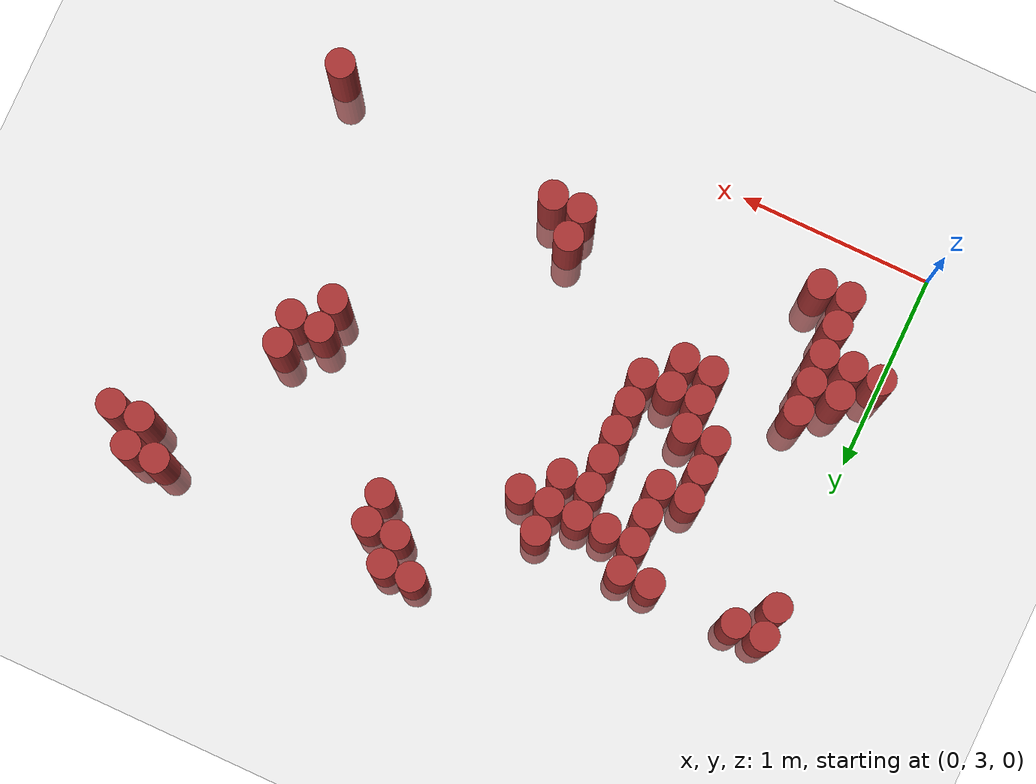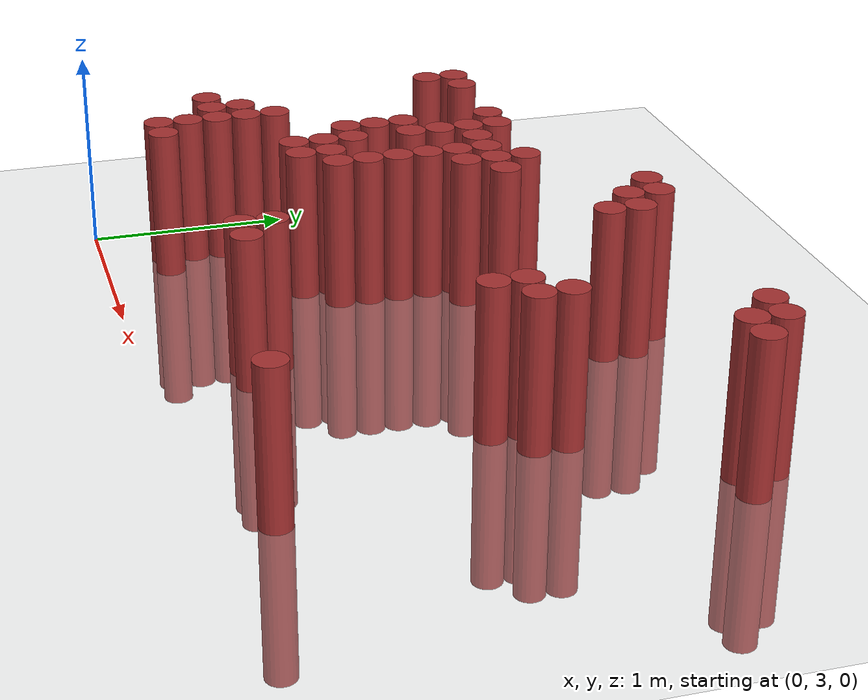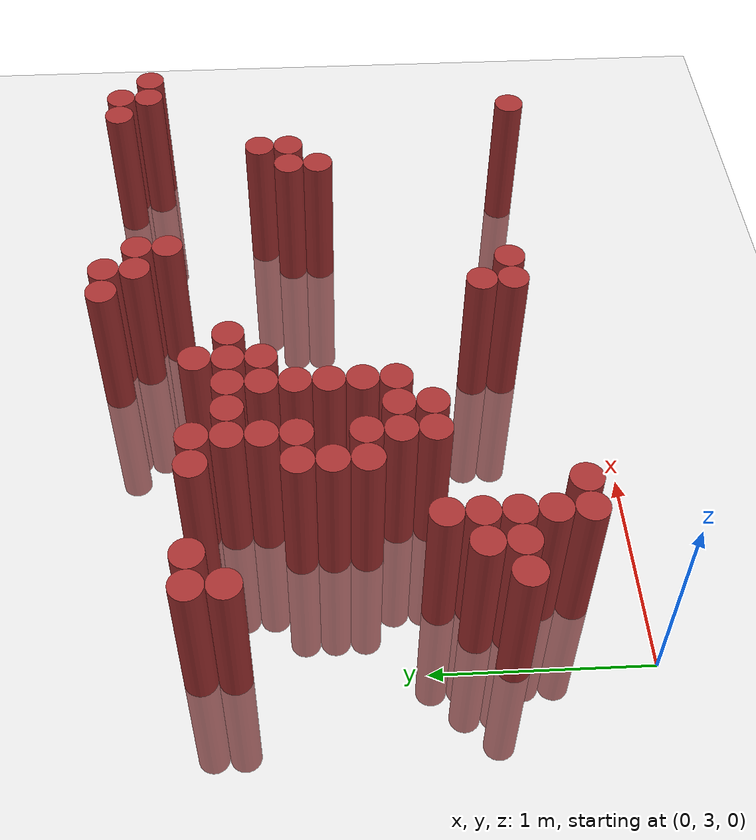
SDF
<sdf version="1.6">
 <world name="default">
  <model name="ground_plane">
   <static>1</static>
   <link name="link">
    <collision name="collision">
     <geometry><plane><normal>0 0 1</normal><size>100 100</size></plane></geometry>
     <surface><friction><ode><mu>100</mu><mu2>50</mu2></ode></friction></surface>
    </collision>
    <visual name="visual">
     <cast_shadows>0</cast_shadows>
     <geometry><plane><normal>0 0 1</normal><size>100 100</size></plane></geometry>
     <material>
      <script><uri>file://media/materials/scripts/gazebo.material</uri><name>Gazebo/Grey</name></script>
     </material>
    </visual>
   </link>
  </model>
  <model name="unit_cylinder_407">
   <static>1</static>
   <pose>0.025000 3.625000 0.000000 0.000000 0.000000 0.000000</pose>
   <link name="link">
    <inertial>
     <mass>1</mass>
     <inertia><ixx>0.145833</ixx><ixy>0</ixy><ixz>0</ixz><iyy>0.145833</iyy><iyz>0</iyz><izz>0.125</izz></inertia>
    </inertial>
    <collision name="collision">
     <geometry><cylinder><radius>0.075000</radius><length>1.5</length></cylinder></geometry>
    </collision>
    <visual name="visual">
     <geometry><cylinder><radius>0.075000</radius><length>1.5</length></cylinder></geometry>
     <material>
      <ambient>0.648000 0.192000 0.192000 1</ambient>
      <diffuse>0.648000 0.192000 0.192000 1</diffuse>
     </material>
     <material>
      <script><name>Gazebo/Grey</name><uri>file://media/materials/scripts/gazebo.material</uri></script>
     </material>
    </visual>
   </link>
  </model>
  <model name="unit_cylinder_408">
   <static>1</static>
   <pose>0.025000 4.825000 0.000000 0.000000 0.000000 0.000000</pose>
   <link name="link">
    <inertial>
     <mass>1</mass>
     <inertia><ixx>0.145833</ixx><ixy>0</ixy><ixz>0</ixz><iyy>0.145833</iyy><iyz>0</iyz><izz>0.125</izz></inertia>
    </inertial>
    <collision name="collision">
     <geometry><cylinder><radius>0.075000</radius><length>1.5</length></cylinder></geometry>
    </collision>
    <visual name="visual">
     <geometry><cylinder><radius>0.075000</radius><length>1.5</length></cylinder></geometry>
     <material>
      <ambient>0.648000 0.192000 0.192000 1</ambient>
      <diffuse>0.648000 0.192000 0.192000 1</diffuse>
     </material>
     <material>
      <script><name>Gazebo/Grey</name><uri>file://media/materials/scripts/gazebo.material</uri></script>
     </material>
    </visual>
   </link>
  </model>
  <model name="unit_cylinder_409">
   <static>1</static>
   <pose>0.025000 4.975000 0.000000 0.000000 0.000000 0.000000</pose>
   <link name="link">
    <inertial>
     <mass>1</mass>
     <inertia><ixx>0.145833</ixx><ixy>0</ixy><ixz>0</ixz><iyy>0.145833</iyy><iyz>0</iyz><izz>0.125</izz></inertia>
    </inertial>
    <collision name="collision">
     <geometry><cylinder><radius>0.075000</radius><length>1.5</length></cylinder></geometry>
    </collision>
    <visual name="visual">
     <geometry><cylinder><radius>0.075000</radius><length>1.5</length></cylinder></geometry>
     <material>
      <ambient>0.648000 0.192000 0.192000 1</ambient>
      <diffuse>0.648000 0.192000 0.192000 1</diffuse>
     </material>
     <material>
      <script><name>Gazebo/Grey</name><uri>file://media/materials/scripts/gazebo.material</uri></script>
     </material>
    </visual>
   </link>
  </model>
  <model name="unit_cylinder_421">
   <static>1</static>
   <pose>0.175000 3.625000 0.000000 0.000000 0.000000 0.000000</pose>
   <link name="link">
    <inertial>
     <mass>1</mass>
     <inertia><ixx>0.145833</ixx><ixy>0</ixy><ixz>0</ixz><iyy>0.145833</iyy><iyz>0</iyz><izz>0.125</izz></inertia>
    </inertial>
    <collision name="collision">
     <geometry><cylinder><radius>0.075000</radius><length>1.5</length></cylinder></geometry>
    </collision>
    <visual name="visual">
     <geometry><cylinder><radius>0.075000</radius><length>1.5</length></cylinder></geometry>
     <material>
      <ambient>0.648000 0.192000 0.192000 1</ambient>
      <diffuse>0.648000 0.192000 0.192000 1</diffuse>
     </material>
     <material>
      <script><name>Gazebo/Grey</name><uri>file://media/materials/scripts/gazebo.material</uri></script>
     </material>
    </visual>
   </link>
  </model>
  <model name="unit_cylinder_422">
   <static>1</static>
   <pose>0.175000 3.775000 0.000000 0.000000 0.000000 0.000000</pose>
   <link name="link">
    <inertial>
     <mass>1</mass>
     <inertia><ixx>0.145833</ixx><ixy>0</ixy><ixz>0</ixz><iyy>0.145833</iyy><iyz>0</iyz><izz>0.125</izz></inertia>
    </inertial>
    <collision name="collision">
     <geometry><cylinder><radius>0.075000</radius><length>1.5</length></cylinder></geometry>
    </collision>
    <visual name="visual">
     <geometry><cylinder><radius>0.075000</radius><length>1.5</length></cylinder></geometry>
     <material>
      <ambient>0.648000 0.192000 0.192000 1</ambient>
      <diffuse>0.648000 0.192000 0.192000 1</diffuse>
     </material>
     <material>
      <script><name>Gazebo/Grey</name><uri>file://media/materials/scripts/gazebo.material</uri></script>
     </material>
    </visual>
   </link>
  </model>
  <model name="unit_cylinder_423">
   <static>1</static>
   <pose>0.175000 4.975000 0.000000 0.000000 0.000000 0.000000</pose>
   <link name="link">
    <inertial>
     <mass>1</mass>
     <inertia><ixx>0.145833</ixx><ixy>0</ixy><ixz>0</ixz><iyy>0.145833</iyy><iyz>0</iyz><izz>0.125</izz></inertia>
    </inertial>
    <collision name="collision">
     <geometry><cylinder><radius>0.075000</radius><length>1.5</length></cylinder></geometry>
    </collision>
    <visual name="visual">
     <geometry><cylinder><radius>0.075000</radius><length>1.5</length></cylinder></geometry>
     <material>
      <ambient>0.648000 0.192000 0.192000 1</ambient>
      <diffuse>0.648000 0.192000 0.192000 1</diffuse>
     </material>
     <material>
      <script><name>Gazebo/Grey</name><uri>file://media/materials/scripts/gazebo.material</uri></script>
     </material>
    </visual>
   </link>
  </model>
  <model name="unit_cylinder_430">
   <static>1</static>
   <pose>0.325000 3.325000 0.000000 0.000000 0.000000 0.000000</pose>
   <link name="link">
    <inertial>
     <mass>1</mass>
     <inertia><ixx>0.145833</ixx><ixy>0</ixy><ixz>0</ixz><iyy>0.145833</iyy><iyz>0</iyz><izz>0.125</izz></inertia>
    </inertial>
    <collision name="collision">
     <geometry><cylinder><radius>0.075000</radius><length>1.5</length></cylinder></geometry>
    </collision>
    <visual name="visual">
     <geometry><cylinder><radius>0.075000</radius><length>1.5</length></cylinder></geometry>
     <material>
      <ambient>0.648000 0.192000 0.192000 1</ambient>
      <diffuse>0.648000 0.192000 0.192000 1</diffuse>
     </material>
     <material>
      <script><name>Gazebo/Grey</name><uri>file://media/materials/scripts/gazebo.material</uri></script>
     </material>
    </visual>
   </link>
  </model>
  <model name="unit_cylinder_431">
   <static>1</static>
   <pose>0.325000 3.475000 0.000000 0.000000 0.000000 0.000000</pose>
   <link name="link">
    <inertial>
     <mass>1</mass>
     <inertia><ixx>0.145833</ixx><ixy>0</ixy><ixz>0</ixz><iyy>0.145833</iyy><iyz>0</iyz><izz>0.125</izz></inertia>
    </inertial>
    <collision name="collision">
     <geometry><cylinder><radius>0.075000</radius><length>1.5</length></cylinder></geometry>
    </collision>
    <visual name="visual">
     <geometry><cylinder><radius>0.075000</radius><length>1.5</length></cylinder></geometry>
     <material>
      <ambient>0.648000 0.192000 0.192000 1</ambient>
      <diffuse>0.648000 0.192000 0.192000 1</diffuse>
     </material>
     <material>
      <script><name>Gazebo/Grey</name><uri>file://media/materials/scripts/gazebo.material</uri></script>
     </material>
    </visual>
   </link>
  </model>
  <model name="unit_cylinder_432">
   <static>1</static>
   <pose>0.325000 3.625000 0.000000 0.000000 0.000000 0.000000</pose>
   <link name="link">
    <inertial>
     <mass>1</mass>
     <inertia><ixx>0.145833</ixx><ixy>0</ixy><ixz>0</ixz><iyy>0.145833</iyy><iyz>0</iyz><izz>0.125</izz></inertia>
    </inertial>
    <collision name="collision">
     <geometry><cylinder><radius>0.075000</radius><length>1.5</length></cylinder></geometry>
    </collision>
    <visual name="visual">
     <geometry><cylinder><radius>0.075000</radius><length>1.5</length></cylinder></geometry>
     <material>
      <ambient>0.648000 0.192000 0.192000 1</ambient>
      <diffuse>0.648000 0.192000 0.192000 1</diffuse>
     </material>
     <material>
      <script><name>Gazebo/Grey</name><uri>file://media/materials/scripts/gazebo.material</uri></script>
     </material>
    </visual>
   </link>
  </model>
  <model name="unit_cylinder_433">
   <static>1</static>
   <pose>0.325000 3.775000 0.000000 0.000000 0.000000 0.000000</pose>
   <link name="link">
    <inertial>
     <mass>1</mass>
     <inertia><ixx>0.145833</ixx><ixy>0</ixy><ixz>0</ixz><iyy>0.145833</iyy><iyz>0</iyz><izz>0.125</izz></inertia>
    </inertial>
    <collision name="collision">
     <geometry><cylinder><radius>0.075000</radius><length>1.5</length></cylinder></geometry>
    </collision>
    <visual name="visual">
     <geometry><cylinder><radius>0.075000</radius><length>1.5</length></cylinder></geometry>
     <material>
      <ambient>0.648000 0.192000 0.192000 1</ambient>
      <diffuse>0.648000 0.192000 0.192000 1</diffuse>
     </material>
     <material>
      <script><name>Gazebo/Grey</name><uri>file://media/materials/scripts/gazebo.material</uri></script>
     </material>
    </visual>
   </link>
  </model>
  <model name="unit_cylinder_434">
   <static>1</static>
   <pose>0.325000 3.925000 0.000000 0.000000 0.000000 0.000000</pose>
   <link name="link">
    <inertial>
     <mass>1</mass>
     <inertia><ixx>0.145833</ixx><ixy>0</ixy><ixz>0</ixz><iyy>0.145833</iyy><iyz>0</iyz><izz>0.125</izz></inertia>
    </inertial>
    <collision name="collision">
     <geometry><cylinder><radius>0.075000</radius><length>1.5</length></cylinder></geometry>
    </collision>
    <visual name="visual">
     <geometry><cylinder><radius>0.075000</radius><length>1.5</length></cylinder></geometry>
     <material>
      <ambient>0.648000 0.192000 0.192000 1</ambient>
      <diffuse>0.648000 0.192000 0.192000 1</diffuse>
     </material>
     <material>
      <script><name>Gazebo/Grey</name><uri>file://media/materials/scripts/gazebo.material</uri></script>
     </material>
    </visual>
   </link>
  </model>
  <model name="unit_cylinder_440">
   <static>1</static>
   <pose>0.475000 3.325000 0.000000 0.000000 0.000000 0.000000</pose>
   <link name="link">
    <inertial>
     <mass>1</mass>
     <inertia><ixx>0.145833</ixx><ixy>0</ixy><ixz>0</ixz><iyy>0.145833</iyy><iyz>0</iyz><izz>0.125</izz></inertia>
    </inertial>
    <collision name="collision">
     <geometry><cylinder><radius>0.075000</radius><length>1.5</length></cylinder></geometry>
    </collision>
    <visual name="visual">
     <geometry><cylinder><radius>0.075000</radius><length>1.5</length></cylinder></geometry>
     <material>
      <ambient>0.648000 0.192000 0.192000 1</ambient>
      <diffuse>0.648000 0.192000 0.192000 1</diffuse>
     </material>
     <material>
      <script><name>Gazebo/Grey</name><uri>file://media/materials/scripts/gazebo.material</uri></script>
     </material>
    </visual>
   </link>
  </model>
  <model name="unit_cylinder_445">
   <static>1</static>
   <pose>0.625000 4.225000 0.000000 0.000000 0.000000 0.000000</pose>
   <link name="link">
    <inertial>
     <mass>1</mass>
     <inertia><ixx>0.145833</ixx><ixy>0</ixy><ixz>0</ixz><iyy>0.145833</iyy><iyz>0</iyz><izz>0.125</izz></inertia>
    </inertial>
    <collision name="collision">
     <geometry><cylinder><radius>0.075000</radius><length>1.5</length></cylinder></geometry>
    </collision>
    <visual name="visual">
     <geometry><cylinder><radius>0.075000</radius><length>1.5</length></cylinder></geometry>
     <material>
      <ambient>0.648000 0.192000 0.192000 1</ambient>
      <diffuse>0.648000 0.192000 0.192000 1</diffuse>
     </material>
     <material>
      <script><name>Gazebo/Grey</name><uri>file://media/materials/scripts/gazebo.material</uri></script>
     </material>
    </visual>
   </link>
  </model>
  <model name="unit_cylinder_446">
   <static>1</static>
   <pose>0.625000 4.375000 0.000000 0.000000 0.000000 0.000000</pose>
   <link name="link">
    <inertial>
     <mass>1</mass>
     <inertia><ixx>0.145833</ixx><ixy>0</ixy><ixz>0</ixz><iyy>0.145833</iyy><iyz>0</iyz><izz>0.125</izz></inertia>
    </inertial>
    <collision name="collision">
     <geometry><cylinder><radius>0.075000</radius><length>1.5</length></cylinder></geometry>
    </collision>
    <visual name="visual">
     <geometry><cylinder><radius>0.075000</radius><length>1.5</length></cylinder></geometry>
     <material>
      <ambient>0.648000 0.192000 0.192000 1</ambient>
      <diffuse>0.648000 0.192000 0.192000 1</diffuse>
     </material>
     <material>
      <script><name>Gazebo/Grey</name><uri>file://media/materials/scripts/gazebo.material</uri></script>
     </material>
    </visual>
   </link>
  </model>
  <model name="unit_cylinder_447">
   <static>1</static>
   <pose>0.625000 4.525000 0.000000 0.000000 0.000000 0.000000</pose>
   <link name="link">
    <inertial>
     <mass>1</mass>
     <inertia><ixx>0.145833</ixx><ixy>0</ixy><ixz>0</ixz><iyy>0.145833</iyy><iyz>0</iyz><izz>0.125</izz></inertia>
    </inertial>
    <collision name="collision">
     <geometry><cylinder><radius>0.075000</radius><length>1.5</length></cylinder></geometry>
    </collision>
    <visual name="visual">
     <geometry><cylinder><radius>0.075000</radius><length>1.5</length></cylinder></geometry>
     <material>
      <ambient>0.648000 0.192000 0.192000 1</ambient>
      <diffuse>0.648000 0.192000 0.192000 1</diffuse>
     </material>
     <material>
      <script><name>Gazebo/Grey</name><uri>file://media/materials/scripts/gazebo.material</uri></script>
     </material>
    </visual>
   </link>
  </model>
  <model name="unit_cylinder_448">
   <static>1</static>
   <pose>0.625000 4.975000 0.000000 0.000000 0.000000 0.000000</pose>
   <link name="link">
    <inertial>
     <mass>1</mass>
     <inertia><ixx>0.145833</ixx><ixy>0</ixy><ixz>0</ixz><iyy>0.145833</iyy><iyz>0</iyz><izz>0.125</izz></inertia>
    </inertial>
    <collision name="collision">
     <geometry><cylinder><radius>0.075000</radius><length>1.5</length></cylinder></geometry>
    </collision>
    <visual name="visual">
     <geometry><cylinder><radius>0.075000</radius><length>1.5</length></cylinder></geometry>
     <material>
      <ambient>0.648000 0.192000 0.192000 1</ambient>
      <diffuse>0.648000 0.192000 0.192000 1</diffuse>
     </material>
     <material>
      <script><name>Gazebo/Grey</name><uri>file://media/materials/scripts/gazebo.material</uri></script>
     </material>
    </visual>
   </link>
  </model>
  <model name="unit_cylinder_453">
   <static>1</static>
   <pose>0.775000 3.925000 0.000000 0.000000 0.000000 0.000000</pose>
   <link name="link">
    <inertial>
     <mass>1</mass>
     <inertia><ixx>0.145833</ixx><ixy>0</ixy><ixz>0</ixz><iyy>0.145833</iyy><iyz>0</iyz><izz>0.125</izz></inertia>
    </inertial>
    <collision name="collision">
     <geometry><cylinder><radius>0.075000</radius><length>1.5</length></cylinder></geometry>
    </collision>
    <visual name="visual">
     <geometry><cylinder><radius>0.075000</radius><length>1.5</length></cylinder></geometry>
     <material>
      <ambient>0.648000 0.192000 0.192000 1</ambient>
      <diffuse>0.648000 0.192000 0.192000 1</diffuse>
     </material>
     <material>
      <script><name>Gazebo/Grey</name><uri>file://media/materials/scripts/gazebo.material</uri></script>
     </material>
    </visual>
   </link>
  </model>
  <model name="unit_cylinder_454">
   <static>1</static>
   <pose>0.775000 4.075000 0.000000 0.000000 0.000000 0.000000</pose>
   <link name="link">
    <inertial>
     <mass>1</mass>
     <inertia><ixx>0.145833</ixx><ixy>0</ixy><ixz>0</ixz><iyy>0.145833</iyy><iyz>0</iyz><izz>0.125</izz></inertia>
    </inertial>
    <collision name="collision">
     <geometry><cylinder><radius>0.075000</radius><length>1.5</length></cylinder></geometry>
    </collision>
    <visual name="visual">
     <geometry><cylinder><radius>0.075000</radius><length>1.5</length></cylinder></geometry>
     <material>
      <ambient>0.648000 0.192000 0.192000 1</ambient>
      <diffuse>0.648000 0.192000 0.192000 1</diffuse>
     </material>
     <material>
      <script><name>Gazebo/Grey</name><uri>file://media/materials/scripts/gazebo.material</uri></script>
     </material>
    </visual>
   </link>
  </model>
  <model name="unit_cylinder_455">
   <static>1</static>
   <pose>0.775000 4.225000 0.000000 0.000000 0.000000 0.000000</pose>
   <link name="link">
    <inertial>
     <mass>1</mass>
     <inertia><ixx>0.145833</ixx><ixy>0</ixy><ixz>0</ixz><iyy>0.145833</iyy><iyz>0</iyz><izz>0.125</izz></inertia>
    </inertial>
    <collision name="collision">
     <geometry><cylinder><radius>0.075000</radius><length>1.5</length></cylinder></geometry>
    </collision>
    <visual name="visual">
     <geometry><cylinder><radius>0.075000</radius><length>1.5</length></cylinder></geometry>
     <material>
      <ambient>0.648000 0.192000 0.192000 1</ambient>
      <diffuse>0.648000 0.192000 0.192000 1</diffuse>
     </material>
     <material>
      <script><name>Gazebo/Grey</name><uri>file://media/materials/scripts/gazebo.material</uri></script>
     </material>
    </visual>
   </link>
  </model>
  <model name="unit_cylinder_456">
   <static>1</static>
   <pose>0.775000 4.525000 0.000000 0.000000 0.000000 0.000000</pose>
   <link name="link">
    <inertial>
     <mass>1</mass>
     <inertia><ixx>0.145833</ixx><ixy>0</ixy><ixz>0</ixz><iyy>0.145833</iyy><iyz>0</iyz><izz>0.125</izz></inertia>
    </inertial>
    <collision name="collision">
     <geometry><cylinder><radius>0.075000</radius><length>1.5</length></cylinder></geometry>
    </collision>
    <visual name="visual">
     <geometry><cylinder><radius>0.075000</radius><length>1.5</length></cylinder></geometry>
     <material>
      <ambient>0.648000 0.192000 0.192000 1</ambient>
      <diffuse>0.648000 0.192000 0.192000 1</diffuse>
     </material>
     <material>
      <script><name>Gazebo/Grey</name><uri>file://media/materials/scripts/gazebo.material</uri></script>
     </material>
    </visual>
   </link>
  </model>
  <model name="unit_cylinder_457">
   <static>1</static>
   <pose>0.775000 4.675000 0.000000 0.000000 0.000000 0.000000</pose>
   <link name="link">
    <inertial>
     <mass>1</mass>
     <inertia><ixx>0.145833</ixx><ixy>0</ixy><ixz>0</ixz><iyy>0.145833</iyy><iyz>0</iyz><izz>0.125</izz></inertia>
    </inertial>
    <collision name="collision">
     <geometry><cylinder><radius>0.075000</radius><length>1.5</length></cylinder></geometry>
    </collision>
    <visual name="visual">
     <geometry><cylinder><radius>0.075000</radius><length>1.5</length></cylinder></geometry>
     <material>
      <ambient>0.648000 0.192000 0.192000 1</ambient>
      <diffuse>0.648000 0.192000 0.192000 1</diffuse>
     </material>
     <material>
      <script><name>Gazebo/Grey</name><uri>file://media/materials/scripts/gazebo.material</uri></script>
     </material>
    </visual>
   </link>
  </model>
  <model name="unit_cylinder_458">
   <static>1</static>
   <pose>0.775000 4.825000 0.000000 0.000000 0.000000 0.000000</pose>
   <link name="link">
    <inertial>
     <mass>1</mass>
     <inertia><ixx>0.145833</ixx><ixy>0</ixy><ixz>0</ixz><iyy>0.145833</iyy><iyz>0</iyz><izz>0.125</izz></inertia>
    </inertial>
    <collision name="collision">
     <geometry><cylinder><radius>0.075000</radius><length>1.5</length></cylinder></geometry>
    </collision>
    <visual name="visual">
     <geometry><cylinder><radius>0.075000</radius><length>1.5</length></cylinder></geometry>
     <material>
      <ambient>0.648000 0.192000 0.192000 1</ambient>
      <diffuse>0.648000 0.192000 0.192000 1</diffuse>
     </material>
     <material>
      <script><name>Gazebo/Grey</name><uri>file://media/materials/scripts/gazebo.material</uri></script>
     </material>
    </visual>
   </link>
  </model>
  <model name="unit_cylinder_459">
   <static>1</static>
   <pose>0.775000 4.975000 0.000000 0.000000 0.000000 0.000000</pose>
   <link name="link">
    <inertial>
     <mass>1</mass>
     <inertia><ixx>0.145833</ixx><ixy>0</ixy><ixz>0</ixz><iyy>0.145833</iyy><iyz>0</iyz><izz>0.125</izz></inertia>
    </inertial>
    <collision name="collision">
     <geometry><cylinder><radius>0.075000</radius><length>1.5</length></cylinder></geometry>
    </collision>
    <visual name="visual">
     <geometry><cylinder><radius>0.075000</radius><length>1.5</length></cylinder></geometry>
     <material>
      <ambient>0.648000 0.192000 0.192000 1</ambient>
      <diffuse>0.648000 0.192000 0.192000 1</diffuse>
     </material>
     <material>
      <script><name>Gazebo/Grey</name><uri>file://media/materials/scripts/gazebo.material</uri></script>
     </material>
    </visual>
   </link>
  </model>
  <model name="unit_cylinder_469">
   <static>1</static>
   <pose>0.925000 3.925000 0.000000 0.000000 0.000000 0.000000</pose>
   <link name="link">
    <inertial>
     <mass>1</mass>
     <inertia><ixx>0.145833</ixx><ixy>0</ixy><ixz>0</ixz><iyy>0.145833</iyy><iyz>0</iyz><izz>0.125</izz></inertia>
    </inertial>
    <collision name="collision">
     <geometry><cylinder><radius>0.075000</radius><length>1.5</length></cylinder></geometry>
    </collision>
    <visual name="visual">
     <geometry><cylinder><radius>0.075000</radius><length>1.5</length></cylinder></geometry>
     <material>
      <ambient>0.648000 0.192000 0.192000 1</ambient>
      <diffuse>0.648000 0.192000 0.192000 1</diffuse>
     </material>
     <material>
      <script><name>Gazebo/Grey</name><uri>file://media/materials/scripts/gazebo.material</uri></script>
     </material>
    </visual>
   </link>
  </model>
  <model name="unit_cylinder_470">
   <static>1</static>
   <pose>0.925000 4.075000 0.000000 0.000000 0.000000 0.000000</pose>
   <link name="link">
    <inertial>
     <mass>1</mass>
     <inertia><ixx>0.145833</ixx><ixy>0</ixy><ixz>0</ixz><iyy>0.145833</iyy><iyz>0</iyz><izz>0.125</izz></inertia>
    </inertial>
    <collision name="collision">
     <geometry><cylinder><radius>0.075000</radius><length>1.5</length></cylinder></geometry>
    </collision>
    <visual name="visual">
     <geometry><cylinder><radius>0.075000</radius><length>1.5</length></cylinder></geometry>
     <material>
      <ambient>0.648000 0.192000 0.192000 1</ambient>
      <diffuse>0.648000 0.192000 0.192000 1</diffuse>
     </material>
     <material>
      <script><name>Gazebo/Grey</name><uri>file://media/materials/scripts/gazebo.material</uri></script>
     </material>
    </visual>
   </link>
  </model>
  <model name="unit_cylinder_471">
   <static>1</static>
   <pose>0.925000 4.825000 0.000000 0.000000 0.000000 0.000000</pose>
   <link name="link">
    <inertial>
     <mass>1</mass>
     <inertia><ixx>0.145833</ixx><ixy>0</ixy><ixz>0</ixz><iyy>0.145833</iyy><iyz>0</iyz><izz>0.125</izz></inertia>
    </inertial>
    <collision name="collision">
     <geometry><cylinder><radius>0.075000</radius><length>1.5</length></cylinder></geometry>
    </collision>
    <visual name="visual">
     <geometry><cylinder><radius>0.075000</radius><length>1.5</length></cylinder></geometry>
     <material>
      <ambient>0.648000 0.192000 0.192000 1</ambient>
      <diffuse>0.648000 0.192000 0.192000 1</diffuse>
     </material>
     <material>
      <script><name>Gazebo/Grey</name><uri>file://media/materials/scripts/gazebo.material</uri></script>
     </material>
    </visual>
   </link>
  </model>
  <model name="unit_cylinder_482">
   <static>1</static>
   <pose>1.075000 4.075000 0.000000 0.000000 0.000000 0.000000</pose>
   <link name="link">
    <inertial>
     <mass>1</mass>
     <inertia><ixx>0.145833</ixx><ixy>0</ixy><ixz>0</ixz><iyy>0.145833</iyy><iyz>0</iyz><izz>0.125</izz></inertia>
    </inertial>
    <collision name="collision">
     <geometry><cylinder><radius>0.075000</radius><length>1.5</length></cylinder></geometry>
    </collision>
    <visual name="visual">
     <geometry><cylinder><radius>0.075000</radius><length>1.5</length></cylinder></geometry>
     <material>
      <ambient>0.648000 0.192000 0.192000 1</ambient>
      <diffuse>0.648000 0.192000 0.192000 1</diffuse>
     </material>
     <material>
      <script><name>Gazebo/Grey</name><uri>file://media/materials/scripts/gazebo.material</uri></script>
     </material>
    </visual>
   </link>
  </model>
  <model name="unit_cylinder_483">
   <static>1</static>
   <pose>1.075000 4.225000 0.000000 0.000000 0.000000 0.000000</pose>
   <link name="link">
    <inertial>
     <mass>1</mass>
     <inertia><ixx>0.145833</ixx><ixy>0</ixy><ixz>0</ixz><iyy>0.145833</iyy><iyz>0</iyz><izz>0.125</izz></inertia>
    </inertial>
    <collision name="collision">
     <geometry><cylinder><radius>0.075000</radius><length>1.5</length></cylinder></geometry>
    </collision>
    <visual name="visual">
     <geometry><cylinder><radius>0.075000</radius><length>1.5</length></cylinder></geometry>
     <material>
      <ambient>0.648000 0.192000 0.192000 1</ambient>
      <diffuse>0.648000 0.192000 0.192000 1</diffuse>
     </material>
     <material>
      <script><name>Gazebo/Grey</name><uri>file://media/materials/scripts/gazebo.material</uri></script>
     </material>
    </visual>
   </link>
  </model>
  <model name="unit_cylinder_484">
   <static>1</static>
   <pose>1.075000 4.375000 0.000000 0.000000 0.000000 0.000000</pose>
   <link name="link">
    <inertial>
     <mass>1</mass>
     <inertia><ixx>0.145833</ixx><ixy>0</ixy><ixz>0</ixz><iyy>0.145833</iyy><iyz>0</iyz><izz>0.125</izz></inertia>
    </inertial>
    <collision name="collision">
     <geometry><cylinder><radius>0.075000</radius><length>1.5</length></cylinder></geometry>
    </collision>
    <visual name="visual">
     <geometry><cylinder><radius>0.075000</radius><length>1.5</length></cylinder></geometry>
     <material>
      <ambient>0.648000 0.192000 0.192000 1</ambient>
      <diffuse>0.648000 0.192000 0.192000 1</diffuse>
     </material>
     <material>
      <script><name>Gazebo/Grey</name><uri>file://media/materials/scripts/gazebo.material</uri></script>
     </material>
    </visual>
   </link>
  </model>
  <model name="unit_cylinder_485">
   <static>1</static>
   <pose>1.075000 4.525000 0.000000 0.000000 0.000000 0.000000</pose>
   <link name="link">
    <inertial>
     <mass>1</mass>
     <inertia><ixx>0.145833</ixx><ixy>0</ixy><ixz>0</ixz><iyy>0.145833</iyy><iyz>0</iyz><izz>0.125</izz></inertia>
    </inertial>
    <collision name="collision">
     <geometry><cylinder><radius>0.075000</radius><length>1.5</length></cylinder></geometry>
    </collision>
    <visual name="visual">
     <geometry><cylinder><radius>0.075000</radius><length>1.5</length></cylinder></geometry>
     <material>
      <ambient>0.648000 0.192000 0.192000 1</ambient>
      <diffuse>0.648000 0.192000 0.192000 1</diffuse>
     </material>
     <material>
      <script><name>Gazebo/Grey</name><uri>file://media/materials/scripts/gazebo.material</uri></script>
     </material>
    </visual>
   </link>
  </model>
  <model name="unit_cylinder_486">
   <static>1</static>
   <pose>1.075000 4.675000 0.000000 0.000000 0.000000 0.000000</pose>
   <link name="link">
    <inertial>
     <mass>1</mass>
     <inertia><ixx>0.145833</ixx><ixy>0</ixy><ixz>0</ixz><iyy>0.145833</iyy><iyz>0</iyz><izz>0.125</izz></inertia>
    </inertial>
    <collision name="collision">
     <geometry><cylinder><radius>0.075000</radius><length>1.5</length></cylinder></geometry>
    </collision>
    <visual name="visual">
     <geometry><cylinder><radius>0.075000</radius><length>1.5</length></cylinder></geometry>
     <material>
      <ambient>0.648000 0.192000 0.192000 1</ambient>
      <diffuse>0.648000 0.192000 0.192000 1</diffuse>
     </material>
     <material>
      <script><name>Gazebo/Grey</name><uri>file://media/materials/scripts/gazebo.material</uri></script>
     </material>
    </visual>
   </link>
  </model>
  <model name="unit_cylinder_487">
   <static>1</static>
   <pose>1.075000 4.825000 0.000000 0.000000 0.000000 0.000000</pose>
   <link name="link">
    <inertial>
     <mass>1</mass>
     <inertia><ixx>0.145833</ixx><ixy>0</ixy><ixz>0</ixz><iyy>0.145833</iyy><iyz>0</iyz><izz>0.125</izz></inertia>
    </inertial>
    <collision name="collision">
     <geometry><cylinder><radius>0.075000</radius><length>1.5</length></cylinder></geometry>
    </collision>
    <visual name="visual">
     <geometry><cylinder><radius>0.075000</radius><length>1.5</length></cylinder></geometry>
     <material>
      <ambient>0.648000 0.192000 0.192000 1</ambient>
      <diffuse>0.648000 0.192000 0.192000 1</diffuse>
     </material>
     <material>
      <script><name>Gazebo/Grey</name><uri>file://media/materials/scripts/gazebo.material</uri></script>
     </material>
    </visual>
   </link>
  </model>
  <model name="unit_cylinder_498">
   <static>1</static>
   <pose>1.225000 4.675000 0.000000 0.000000 0.000000 0.000000</pose>
   <link name="link">
    <inertial>
     <mass>1</mass>
     <inertia><ixx>0.145833</ixx><ixy>0</ixy><ixz>0</ixz><iyy>0.145833</iyy><iyz>0</iyz><izz>0.125</izz></inertia>
    </inertial>
    <collision name="collision">
     <geometry><cylinder><radius>0.075000</radius><length>1.5</length></cylinder></geometry>
    </collision>
    <visual name="visual">
     <geometry><cylinder><radius>0.075000</radius><length>1.5</length></cylinder></geometry>
     <material>
      <ambient>0.648000 0.192000 0.192000 1</ambient>
      <diffuse>0.648000 0.192000 0.192000 1</diffuse>
     </material>
     <material>
      <script><name>Gazebo/Grey</name><uri>file://media/materials/scripts/gazebo.material</uri></script>
     </material>
    </visual>
   </link>
  </model>
  <model name="unit_cylinder_499">
   <static>1</static>
   <pose>1.225000 4.825000 0.000000 0.000000 0.000000 0.000000</pose>
   <link name="link">
    <inertial>
     <mass>1</mass>
     <inertia><ixx>0.145833</ixx><ixy>0</ixy><ixz>0</ixz><iyy>0.145833</iyy><iyz>0</iyz><izz>0.125</izz></inertia>
    </inertial>
    <collision name="collision">
     <geometry><cylinder><radius>0.075000</radius><length>1.5</length></cylinder></geometry>
    </collision>
    <visual name="visual">
     <geometry><cylinder><radius>0.075000</radius><length>1.5</length></cylinder></geometry>
     <material>
      <ambient>0.648000 0.192000 0.192000 1</ambient>
      <diffuse>0.648000 0.192000 0.192000 1</diffuse>
     </material>
     <material>
      <script><name>Gazebo/Grey</name><uri>file://media/materials/scripts/gazebo.material</uri></script>
     </material>
    </visual>
   </link>
  </model>
  <model name="unit_cylinder_500">
   <static>1</static>
   <pose>1.225000 4.975000 0.000000 0.000000 0.000000 0.000000</pose>
   <link name="link">
    <inertial>
     <mass>1</mass>
     <inertia><ixx>0.145833</ixx><ixy>0</ixy><ixz>0</ixz><iyy>0.145833</iyy><iyz>0</iyz><izz>0.125</izz></inertia>
    </inertial>
    <collision name="collision">
     <geometry><cylinder><radius>0.075000</radius><length>1.5</length></cylinder></geometry>
    </collision>
    <visual name="visual">
     <geometry><cylinder><radius>0.075000</radius><length>1.5</length></cylinder></geometry>
     <material>
      <ambient>0.648000 0.192000 0.192000 1</ambient>
      <diffuse>0.648000 0.192000 0.192000 1</diffuse>
     </material>
     <material>
      <script><name>Gazebo/Grey</name><uri>file://media/materials/scripts/gazebo.material</uri></script>
     </material>
    </visual>
   </link>
  </model>
  <model name="unit_cylinder_507">
   <static>1</static>
   <pose>1.375000 4.825000 0.000000 0.000000 0.000000 0.000000</pose>
   <link name="link">
    <inertial>
     <mass>1</mass>
     <inertia><ixx>0.145833</ixx><ixy>0</ixy><ixz>0</ixz><iyy>0.145833</iyy><iyz>0</iyz><izz>0.125</izz></inertia>
    </inertial>
    <collision name="collision">
     <geometry><cylinder><radius>0.075000</radius><length>1.5</length></cylinder></geometry>
    </collision>
    <visual name="visual">
     <geometry><cylinder><radius>0.075000</radius><length>1.5</length></cylinder></geometry>
     <material>
      <ambient>0.648000 0.192000 0.192000 1</ambient>
      <diffuse>0.648000 0.192000 0.192000 1</diffuse>
     </material>
     <material>
      <script><name>Gazebo/Grey</name><uri>file://media/materials/scripts/gazebo.material</uri></script>
     </material>
    </visual>
   </link>
  </model>
  <model name="unit_cylinder_519">
   <static>1</static>
   <pose>1.675000 3.475000 0.000000 0.000000 0.000000 0.000000</pose>
   <link name="link">
    <inertial>
     <mass>1</mass>
     <inertia><ixx>0.145833</ixx><ixy>0</ixy><ixz>0</ixz><iyy>0.145833</iyy><iyz>0</iyz><izz>0.125</izz></inertia>
    </inertial>
    <collision name="collision">
     <geometry><cylinder><radius>0.075000</radius><length>1.5</length></cylinder></geometry>
    </collision>
    <visual name="visual">
     <geometry><cylinder><radius>0.075000</radius><length>1.5</length></cylinder></geometry>
     <material>
      <ambient>0.648000 0.192000 0.192000 1</ambient>
      <diffuse>0.648000 0.192000 0.192000 1</diffuse>
     </material>
     <material>
      <script><name>Gazebo/Grey</name><uri>file://media/materials/scripts/gazebo.material</uri></script>
     </material>
    </visual>
   </link>
  </model>
  <model name="unit_cylinder_520">
   <static>1</static>
   <pose>1.675000 3.625000 0.000000 0.000000 0.000000 0.000000</pose>
   <link name="link">
    <inertial>
     <mass>1</mass>
     <inertia><ixx>0.145833</ixx><ixy>0</ixy><ixz>0</ixz><iyy>0.145833</iyy><iyz>0</iyz><izz>0.125</izz></inertia>
    </inertial>
    <collision name="collision">
     <geometry><cylinder><radius>0.075000</radius><length>1.5</length></cylinder></geometry>
    </collision>
    <visual name="visual">
     <geometry><cylinder><radius>0.075000</radius><length>1.5</length></cylinder></geometry>
     <material>
      <ambient>0.648000 0.192000 0.192000 1</ambient>
      <diffuse>0.648000 0.192000 0.192000 1</diffuse>
     </material>
     <material>
      <script><name>Gazebo/Grey</name><uri>file://media/materials/scripts/gazebo.material</uri></script>
     </material>
    </visual>
   </link>
  </model>
  <model name="unit_cylinder_521">
   <static>1</static>
   <pose>1.675000 5.425000 0.000000 0.000000 0.000000 0.000000</pose>
   <link name="link">
    <inertial>
     <mass>1</mass>
     <inertia><ixx>0.145833</ixx><ixy>0</ixy><ixz>0</ixz><iyy>0.145833</iyy><iyz>0</iyz><izz>0.125</izz></inertia>
    </inertial>
    <collision name="collision">
     <geometry><cylinder><radius>0.075000</radius><length>1.5</length></cylinder></geometry>
    </collision>
    <visual name="visual">
     <geometry><cylinder><radius>0.075000</radius><length>1.5</length></cylinder></geometry>
     <material>
      <ambient>0.648000 0.192000 0.192000 1</ambient>
      <diffuse>0.648000 0.192000 0.192000 1</diffuse>
     </material>
     <material>
      <script><name>Gazebo/Grey</name><uri>file://media/materials/scripts/gazebo.material</uri></script>
     </material>
    </visual>
   </link>
  </model>
  <model name="unit_cylinder_525">
   <static>1</static>
   <pose>1.825000 3.475000 0.000000 0.000000 0.000000 0.000000</pose>
   <link name="link">
    <inertial>
     <mass>1</mass>
     <inertia><ixx>0.145833</ixx><ixy>0</ixy><ixz>0</ixz><iyy>0.145833</iyy><iyz>0</iyz><izz>0.125</izz></inertia>
    </inertial>
    <collision name="collision">
     <geometry><cylinder><radius>0.075000</radius><length>1.5</length></cylinder></geometry>
    </collision>
    <visual name="visual">
     <geometry><cylinder><radius>0.075000</radius><length>1.5</length></cylinder></geometry>
     <material>
      <ambient>0.648000 0.192000 0.192000 1</ambient>
      <diffuse>0.648000 0.192000 0.192000 1</diffuse>
     </material>
     <material>
      <script><name>Gazebo/Grey</name><uri>file://media/materials/scripts/gazebo.material</uri></script>
     </material>
    </visual>
   </link>
  </model>
  <model name="unit_cylinder_526">
   <static>1</static>
   <pose>1.825000 5.275000 0.000000 0.000000 0.000000 0.000000</pose>
   <link name="link">
    <inertial>
     <mass>1</mass>
     <inertia><ixx>0.145833</ixx><ixy>0</ixy><ixz>0</ixz><iyy>0.145833</iyy><iyz>0</iyz><izz>0.125</izz></inertia>
    </inertial>
    <collision name="collision">
     <geometry><cylinder><radius>0.075000</radius><length>1.5</length></cylinder></geometry>
    </collision>
    <visual name="visual">
     <geometry><cylinder><radius>0.075000</radius><length>1.5</length></cylinder></geometry>
     <material>
      <ambient>0.648000 0.192000 0.192000 1</ambient>
      <diffuse>0.648000 0.192000 0.192000 1</diffuse>
     </material>
     <material>
      <script><name>Gazebo/Grey</name><uri>file://media/materials/scripts/gazebo.material</uri></script>
     </material>
    </visual>
   </link>
  </model>
  <model name="unit_cylinder_527">
   <static>1</static>
   <pose>1.825000 5.425000 0.000000 0.000000 0.000000 0.000000</pose>
   <link name="link">
    <inertial>
     <mass>1</mass>
     <inertia><ixx>0.145833</ixx><ixy>0</ixy><ixz>0</ixz><iyy>0.145833</iyy><iyz>0</iyz><izz>0.125</izz></inertia>
    </inertial>
    <collision name="collision">
     <geometry><cylinder><radius>0.075000</radius><length>1.5</length></cylinder></geometry>
    </collision>
    <visual name="visual">
     <geometry><cylinder><radius>0.075000</radius><length>1.5</length></cylinder></geometry>
     <material>
      <ambient>0.648000 0.192000 0.192000 1</ambient>
      <diffuse>0.648000 0.192000 0.192000 1</diffuse>
     </material>
     <material>
      <script><name>Gazebo/Grey</name><uri>file://media/materials/scripts/gazebo.material</uri></script>
     </material>
    </visual>
   </link>
  </model>
  <model name="unit_cylinder_530">
   <static>1</static>
   <pose>1.975000 5.125000 0.000000 0.000000 0.000000 0.000000</pose>
   <link name="link">
    <inertial>
     <mass>1</mass>
     <inertia><ixx>0.145833</ixx><ixy>0</ixy><ixz>0</ixz><iyy>0.145833</iyy><iyz>0</iyz><izz>0.125</izz></inertia>
    </inertial>
    <collision name="collision">
     <geometry><cylinder><radius>0.075000</radius><length>1.5</length></cylinder></geometry>
    </collision>
    <visual name="visual">
     <geometry><cylinder><radius>0.075000</radius><length>1.5</length></cylinder></geometry>
     <material>
      <ambient>0.648000 0.192000 0.192000 1</ambient>
      <diffuse>0.648000 0.192000 0.192000 1</diffuse>
     </material>
     <material>
      <script><name>Gazebo/Grey</name><uri>file://media/materials/scripts/gazebo.material</uri></script>
     </material>
    </visual>
   </link>
  </model>
  <model name="unit_cylinder_531">
   <static>1</static>
   <pose>1.975000 5.275000 0.000000 0.000000 0.000000 0.000000</pose>
   <link name="link">
    <inertial>
     <mass>1</mass>
     <inertia><ixx>0.145833</ixx><ixy>0</ixy><ixz>0</ixz><iyy>0.145833</iyy><iyz>0</iyz><izz>0.125</izz></inertia>
    </inertial>
    <collision name="collision">
     <geometry><cylinder><radius>0.075000</radius><length>1.5</length></cylinder></geometry>
    </collision>
    <visual name="visual">
     <geometry><cylinder><radius>0.075000</radius><length>1.5</length></cylinder></geometry>
     <material>
      <ambient>0.648000 0.192000 0.192000 1</ambient>
      <diffuse>0.648000 0.192000 0.192000 1</diffuse>
     </material>
     <material>
      <script><name>Gazebo/Grey</name><uri>file://media/materials/scripts/gazebo.material</uri></script>
     </material>
    </visual>
   </link>
  </model>
  <model name="unit_cylinder_551">
   <static>1</static>
   <pose>2.575000 4.375000 0.000000 0.000000 0.000000 0.000000</pose>
   <link name="link">
    <inertial>
     <mass>1</mass>
     <inertia><ixx>0.145833</ixx><ixy>0</ixy><ixz>0</ixz><iyy>0.145833</iyy><iyz>0</iyz><izz>0.125</izz></inertia>
    </inertial>
    <collision name="collision">
     <geometry><cylinder><radius>0.075000</radius><length>1.5</length></cylinder></geometry>
    </collision>
    <visual name="visual">
     <geometry><cylinder><radius>0.075000</radius><length>1.5</length></cylinder></geometry>
     <material>
      <ambient>0.648000 0.192000 0.192000 1</ambient>
      <diffuse>0.648000 0.192000 0.192000 1</diffuse>
     </material>
     <material>
      <script><name>Gazebo/Grey</name><uri>file://media/materials/scripts/gazebo.material</uri></script>
     </material>
    </visual>
   </link>
  </model>
  <model name="unit_cylinder_552">
   <static>1</static>
   <pose>2.575000 4.525000 0.000000 0.000000 0.000000 0.000000</pose>
   <link name="link">
    <inertial>
     <mass>1</mass>
     <inertia><ixx>0.145833</ixx><ixy>0</ixy><ixz>0</ixz><iyy>0.145833</iyy><iyz>0</iyz><izz>0.125</izz></inertia>
    </inertial>
    <collision name="collision">
     <geometry><cylinder><radius>0.075000</radius><length>1.5</length></cylinder></geometry>
    </collision>
    <visual name="visual">
     <geometry><cylinder><radius>0.075000</radius><length>1.5</length></cylinder></geometry>
     <material>
      <ambient>0.648000 0.192000 0.192000 1</ambient>
      <diffuse>0.648000 0.192000 0.192000 1</diffuse>
     </material>
     <material>
      <script><name>Gazebo/Grey</name><uri>file://media/materials/scripts/gazebo.material</uri></script>
     </material>
    </visual>
   </link>
  </model>
  <model name="unit_cylinder_561">
   <static>1</static>
   <pose>2.725000 4.525000 0.000000 0.000000 0.000000 0.000000</pose>
   <link name="link">
    <inertial>
     <mass>1</mass>
     <inertia><ixx>0.145833</ixx><ixy>0</ixy><ixz>0</ixz><iyy>0.145833</iyy><iyz>0</iyz><izz>0.125</izz></inertia>
    </inertial>
    <collision name="collision">
     <geometry><cylinder><radius>0.075000</radius><length>1.5</length></cylinder></geometry>
    </collision>
    <visual name="visual">
     <geometry><cylinder><radius>0.075000</radius><length>1.5</length></cylinder></geometry>
     <material>
      <ambient>0.648000 0.192000 0.192000 1</ambient>
      <diffuse>0.648000 0.192000 0.192000 1</diffuse>
     </material>
     <material>
      <script><name>Gazebo/Grey</name><uri>file://media/materials/scripts/gazebo.material</uri></script>
     </material>
    </visual>
   </link>
  </model>
  <model name="unit_cylinder_562">
   <static>1</static>
   <pose>2.725000 4.675000 0.000000 0.000000 0.000000 0.000000</pose>
   <link name="link">
    <inertial>
     <mass>1</mass>
     <inertia><ixx>0.145833</ixx><ixy>0</ixy><ixz>0</ixz><iyy>0.145833</iyy><iyz>0</iyz><izz>0.125</izz></inertia>
    </inertial>
    <collision name="collision">
     <geometry><cylinder><radius>0.075000</radius><length>1.5</length></cylinder></geometry>
    </collision>
    <visual name="visual">
     <geometry><cylinder><radius>0.075000</radius><length>1.5</length></cylinder></geometry>
     <material>
      <ambient>0.648000 0.192000 0.192000 1</ambient>
      <diffuse>0.648000 0.192000 0.192000 1</diffuse>
     </material>
     <material>
      <script><name>Gazebo/Grey</name><uri>file://media/materials/scripts/gazebo.material</uri></script>
     </material>
    </visual>
   </link>
  </model>
  <model name="unit_cylinder_584">
   <static>1</static>
   <pose>3.025000 3.325000 0.000000 0.000000 0.000000 0.000000</pose>
   <link name="link">
    <inertial>
     <mass>1</mass>
     <inertia><ixx>0.145833</ixx><ixy>0</ixy><ixz>0</ixz><iyy>0.145833</iyy><iyz>0</iyz><izz>0.125</izz></inertia>
    </inertial>
    <collision name="collision">
     <geometry><cylinder><radius>0.075000</radius><length>1.5</length></cylinder></geometry>
    </collision>
    <visual name="visual">
     <geometry><cylinder><radius>0.075000</radius><length>1.5</length></cylinder></geometry>
     <material>
      <ambient>0.648000 0.192000 0.192000 1</ambient>
      <diffuse>0.648000 0.192000 0.192000 1</diffuse>
     </material>
     <material>
      <script><name>Gazebo/Grey</name><uri>file://media/materials/scripts/gazebo.material</uri></script>
     </material>
    </visual>
   </link>
  </model>
  <model name="unit_cylinder_585">
   <static>1</static>
   <pose>3.025000 5.425000 0.000000 0.000000 0.000000 0.000000</pose>
   <link name="link">
    <inertial>
     <mass>1</mass>
     <inertia><ixx>0.145833</ixx><ixy>0</ixy><ixz>0</ixz><iyy>0.145833</iyy><iyz>0</iyz><izz>0.125</izz></inertia>
    </inertial>
    <collision name="collision">
     <geometry><cylinder><radius>0.075000</radius><length>1.5</length></cylinder></geometry>
    </collision>
    <visual name="visual">
     <geometry><cylinder><radius>0.075000</radius><length>1.5</length></cylinder></geometry>
     <material>
      <ambient>0.648000 0.192000 0.192000 1</ambient>
      <diffuse>0.648000 0.192000 0.192000 1</diffuse>
     </material>
     <material>
      <script><name>Gazebo/Grey</name><uri>file://media/materials/scripts/gazebo.material</uri></script>
     </material>
    </visual>
   </link>
  </model>
  <model name="unit_cylinder_593">
   <static>1</static>
   <pose>3.175000 5.275000 0.000000 0.000000 0.000000 0.000000</pose>
   <link name="link">
    <inertial>
     <mass>1</mass>
     <inertia><ixx>0.145833</ixx><ixy>0</ixy><ixz>0</ixz><iyy>0.145833</iyy><iyz>0</iyz><izz>0.125</izz></inertia>
    </inertial>
    <collision name="collision">
     <geometry><cylinder><radius>0.075000</radius><length>1.5</length></cylinder></geometry>
    </collision>
    <visual name="visual">
     <geometry><cylinder><radius>0.075000</radius><length>1.5</length></cylinder></geometry>
     <material>
      <ambient>0.648000 0.192000 0.192000 1</ambient>
      <diffuse>0.648000 0.192000 0.192000 1</diffuse>
     </material>
     <material>
      <script><name>Gazebo/Grey</name><uri>file://media/materials/scripts/gazebo.material</uri></script>
     </material>
    </visual>
   </link>
  </model>
  <model name="unit_cylinder_594">
   <static>1</static>
   <pose>3.175000 5.425000 0.000000 0.000000 0.000000 0.000000</pose>
   <link name="link">
    <inertial>
     <mass>1</mass>
     <inertia><ixx>0.145833</ixx><ixy>0</ixy><ixz>0</ixz><iyy>0.145833</iyy><iyz>0</iyz><izz>0.125</izz></inertia>
    </inertial>
    <collision name="collision">
     <geometry><cylinder><radius>0.075000</radius><length>1.5</length></cylinder></geometry>
    </collision>
    <visual name="visual">
     <geometry><cylinder><radius>0.075000</radius><length>1.5</length></cylinder></geometry>
     <material>
      <ambient>0.648000 0.192000 0.192000 1</ambient>
      <diffuse>0.648000 0.192000 0.192000 1</diffuse>
     </material>
     <material>
      <script><name>Gazebo/Grey</name><uri>file://media/materials/scripts/gazebo.material</uri></script>
     </material>
    </visual>
   </link>
  </model>
  <model name="unit_cylinder_596">
   <static>1</static>
   <pose>3.325000 5.275000 0.000000 0.000000 0.000000 0.000000</pose>
   <link name="link">
    <inertial>
     <mass>1</mass>
     <inertia><ixx>0.145833</ixx><ixy>0</ixy><ixz>0</ixz><iyy>0.145833</iyy><iyz>0</iyz><izz>0.125</izz></inertia>
    </inertial>
    <collision name="collision">
     <geometry><cylinder><radius>0.075000</radius><length>1.5</length></cylinder></geometry>
    </collision>
    <visual name="visual">
     <geometry><cylinder><radius>0.075000</radius><length>1.5</length></cylinder></geometry>
     <material>
      <ambient>0.648000 0.192000 0.192000 1</ambient>
      <diffuse>0.648000 0.192000 0.192000 1</diffuse>
     </material>
     <material>
      <script><name>Gazebo/Grey</name><uri>file://media/materials/scripts/gazebo.material</uri></script>
     </material>
    </visual>
   </link>
  </model>
 </world>
</sdf>
